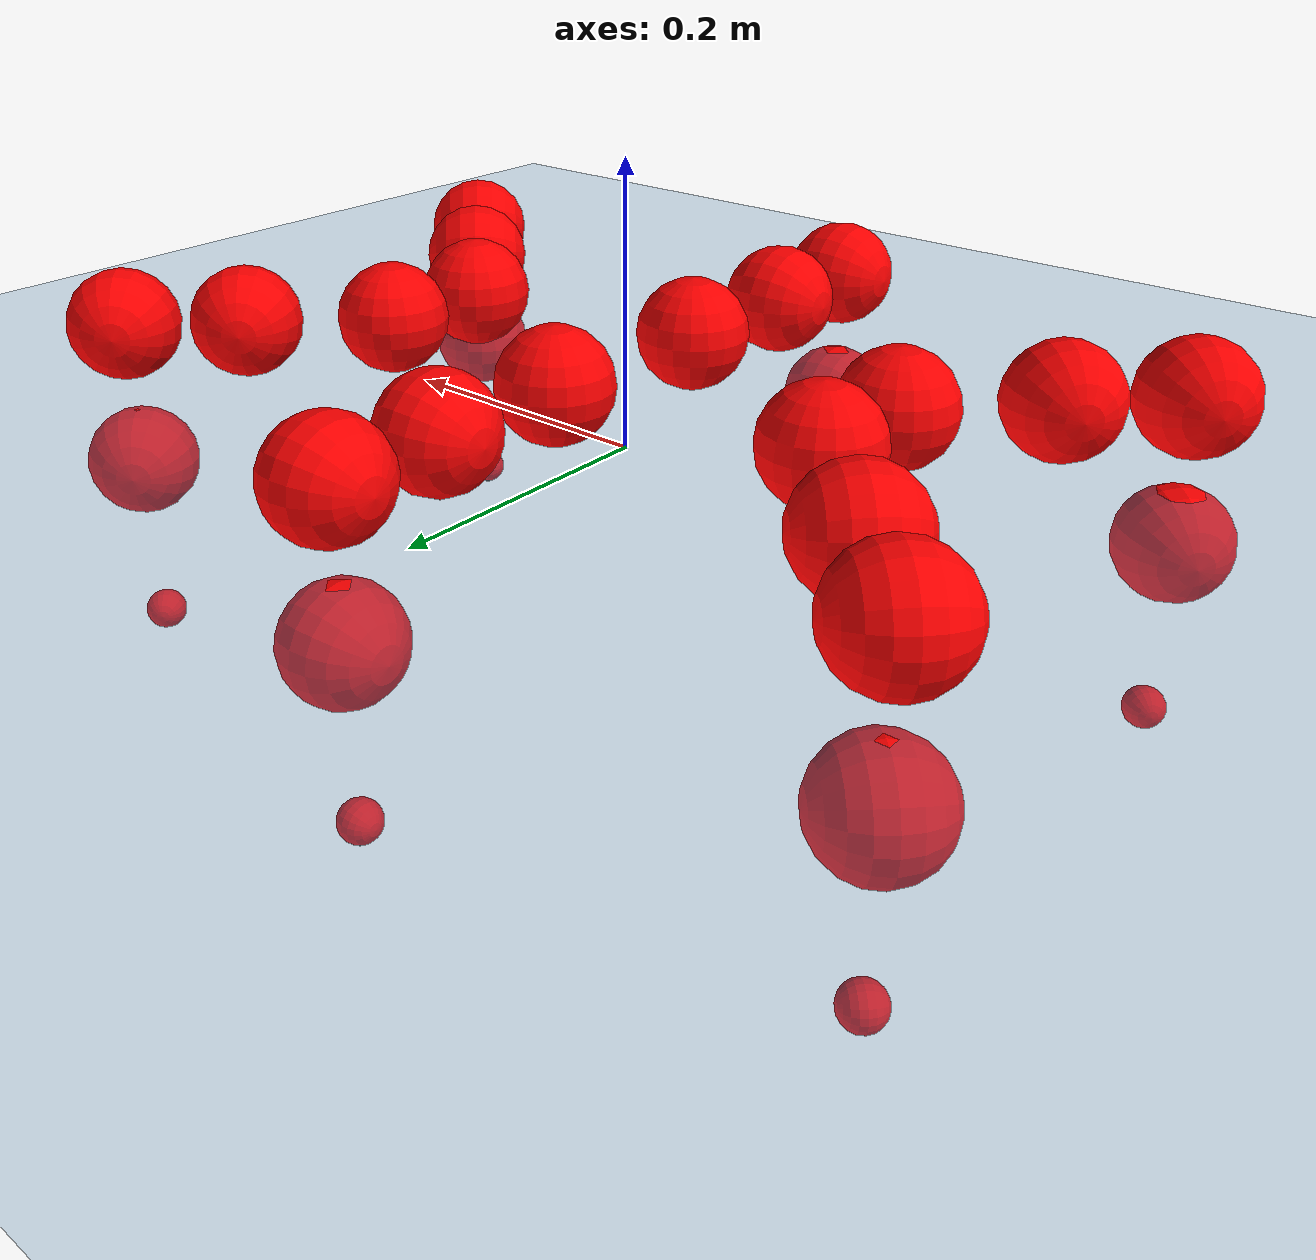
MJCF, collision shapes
<mujoco model="Golem">
  <compiler angle="radian" assetdir="assets" balanceinertia="true" inertiafromgeom="false"/>

  <option timestep="0.005" density="1.2" viscosity="2e-05"/>

  <size nkey="1"/>

  <visual>
    <quality shadowsize="8192"/>
    <map shadowclip="0.5"/>
  </visual>

  <default>
    <default class="/">
      <joint armature="0.01" damping="0.01" frictionloss="0.01"/>
      <geom contype="0" conaffinity="0" group="1" solref="-1000 -80"/>
      <site size="0.01 0.005 0.005" group="5"/>
      <general forcelimited="true" biastype="affine" gainprm="25" biasprm="0 -25 -0.5"/>
      <default class="visual">
        <geom type="mesh" group="2"/>
      </default>
      <default class="collision">
        <geom group="3"/>
      </default>
      <default class="foot">
        <geom size="0.01 0 0" condim="6" group="4" priority="1" solimp="0.015 1 0.01"/>
      </default>
      <default class="reward_collision_sphere">
        <geom group="5" rgba="1 0 0 1"/>
      </default>
    </default>
  </default>

  <asset>
    <texture type="skybox" colorspace="auto" name="//unnamed_texture_0" builtin="gradient" rgb1="0.95 0.95 0.95" rgb2="0.95 0.95 0.95" width="100" height="600"/>
    <texture type="2d" colorspace="auto" name="texplane" builtin="checker" rgb1="0.345 0.575 0.748" rgb2="0.345 0.575 0.748" markrgb="1 1 1" width="512" height="512"/>
    <material name="MatPlane" class="/" texture="texplane" texuniform="true" texrepeat="2 2" specular="0.9"/>
    <mesh name="body" class="/" file="body.stl" scale="0.001 0.001 0.001"/>
    <mesh name="coxa" class="/" file="coxa.stl" scale="0.001 0.001 0.001"/>
    <mesh name="femur" class="/" file="femur.stl" scale="0.001 0.001 0.001"/>
    <mesh name="tibia" class="/" file="tibia.stl" scale="0.001 0.001 0.001"/>
    <mesh name="tarsus" class="/" file="tarsus.stl" scale="0.001 0.001 0.001"/>
  </asset>

  <worldbody>
    <geom name="floor" class="/" size="100 100 0.125" type="plane" group="0" material="MatPlane"/>
    <light name="toplight_shadow" class="/" pos="0 0 5" dir="0.0990148 0.0990148 -0.990148" type="directional" ambient="0.04 0.04 0.04" diffuse="0.55 0.55 0.55" specular="0.12 0.12 0.12"/>
    <light name="toplight_fill" class="/" pos="0 0 5" dir="0.0990148 0.0990148 -0.990148" type="directional" castshadow="false" ambient="0.04 0.04 0.04" diffuse="0.3 0.3 0.3" specular="0.08 0.08 0.08"/>
    <body name="trunk" pos="0.000406018 -0.000144692 0.000931364" quat="1 -2.66069e-05 -4.96477e-05 -0.000204209">
      <inertial pos="-0.000408205 0.000304723 -0.00450597" quat="0.999982 0.00160319 0.00411646 -0.00403479" mass="3.72128" diaginertia="0.0235378 0.00329136 0.0105014"/>
      <joint name="//unnamed_joint_0" type="free"/>
      <geom name="//unnamed_geom_1" class="/" pos="0 0 0.0644937" quat="1 0 0 0" type="mesh" rgba="0.9 0.9 0.9 1" mesh="body"/>
      <site name="imu" class="/" pos="0.149008 0.00346573 0.105622" size="0.00997323"/>
      <camera name="track" class="/" pos="0 -1.60101 0" quat="0.707107 0.707107 0 0" mode="trackcom"/>
      <camera name="ego_camera" class="/" pos="0.153887 0 0.100771" quat="-0.5 -0.5 0.5 0.5"/>
      <body name="coxa_RR" pos="-0.210251 -0.0662918 0.0634456" quat="0.382595 -0.000117566 2.11942e-05 -0.923916">
        <inertial pos="0.000378752 0.000240074 0.00110948" quat="0.999996 -0.000977231 -0.00161203 0.0023241" mass="0.198104" diaginertia="0.0234465 0.00329931 0.0103986"/>
        <joint name="coxa_joint_RR" class="/" pos="0 0 0" axis="0.00426951 -0.00413805 -0.999982" range="-3.11993 3.16147" armature="0.0104311" damping="0.00513081" frictionloss="0.0103844"/>
        <geom name="//unnamed_geom_2" class="/" type="mesh" rgba="0.2 0.2 0.2 1" mesh="coxa"/>
        <geom name="//unnamed_geom_3" class="reward_collision_sphere" size="0.0398929" pos="-0.0355124 0 0"/>
        <body name="femur_RR" pos="0.070102 0.00200791 0.000675842" quat="0.499902 -0.500204 0.499811 0.500084">
          <inertial pos="0.00102127 0.00102327 0.00164975" quat="0.999999 -0.000276699 5.90342e-05 -0.000977429" mass="0.198437" diaginertia="0.0231269 0.00324596 0.0104958"/>
          <joint name="femur_joint_RR" class="/" pos="0 0 0" axis="-0.00150085 0.000738391 -0.999999" stiffness="0.000289846" range="-3.13287 3.1372" armature="0.00967295" damping="0" frictionloss="0.0108216"/>
          <geom name="//unnamed_geom_4" class="/" type="mesh" rgba="0.9 0.9 0.9 1" mesh="femur"/>
          <geom name="//unnamed_geom_5" class="reward_collision_sphere" size="0.0398929"/>
          <body name="tibia_RR" pos="-0.000207244 -0.0854255 -0.0015171" quat="-9.65772e-05 1 5.88204e-05 0.000168089">
            <inertial pos="-0.000749623 -0.00168016 4.08338e-05" quat="0.999998 -0.000358992 -0.00212772 0.00034447" mass="0.196305" diaginertia="0.0233036 0.00328051 0.0104138"/>
            <joint name="tibia_joint_RR" class="/" pos="0 0 0" axis="0.00206947 0.000904014 0.999997" stiffness="0.000717505" range="-3.1398 3.1377" armature="0.0102635" damping="0.0091069" frictionloss="0.0102866"/>
            <geom name="//unnamed_geom_6" class="/" type="mesh" rgba="0.2 0.2 0.2 1" mesh="tibia"/>
            <geom name="//unnamed_geom_7" class="reward_collision_sphere" size="0.0398929"/>
            <body name="tarsus_RR" pos="0.102479 0.000627602 5.60944e-05" quat="1 0.00010329 0.000138824 0.000213175">
              <inertial pos="0.0722082 0.00108565 -0.000166381" quat="0.497876 0.502585 0.501606 0.497914" mass="0.198321" diaginertia="0.0235566 0.00330034 0.0104505"/>
              <joint name="tarsus_joint_RR" class="/" pos="0 0 0" axis="0.00182353 -0.00256959 0.999995" range="-3.17141 3.17373" armature="0.0100542" damping="0" frictionloss="0.0098111"/>
              <geom name="//unnamed_geom_8" class="/" type="mesh" rgba="0.9 0.9 0.9 1" mesh="tarsus"/>
              <geom name="foot_1" class="foot" size="0.00978916" pos="0.13258 0 0" quat="0 -0.707107 0 0.707107"/>
              <geom name="//unnamed_geom_10" class="reward_collision_sphere" size="0.0398929"/>
              <geom name="//unnamed_geom_11" class="reward_collision_sphere" size="0.0149598" pos="0.127253 0 0"/>
              <site name="foot_1" class="foot" pos="0.13258 0 0" quat="0 -0.707107 0 0.707107" size="0.00997323"/>
            </body>
          </body>
        </body>
      </body>
      <body name="coxa_RM" pos="-0.00142375 -0.107108 0.0633096" quat="0.707338 -0.000327507 0.00017888 -0.706875">
        <inertial pos="0.000368771 0.000879967 -3.74738e-05" quat="0.999973 -0.00665112 5.55437e-05 0.00321216" mass="0.200547" diaginertia="0.0232635 0.00328838 0.0104824"/>
        <joint name="coxa_joint_RM" class="/" pos="0 0 0" axis="-0.00262885 0.00195305 -0.999995" range="-3.14291 3.14667" armature="0.0100796" damping="0.0105005" frictionloss="0.0097104"/>
        <geom name="//unnamed_geom_12" class="/" type="mesh" rgba="0.2 0.2 0.2 1" mesh="coxa"/>
        <geom name="//unnamed_geom_13" class="reward_collision_sphere" size="0.0398929" pos="-0.0355124 0 0"/>
        <body name="femur_RM" pos="0.0703663 -0.000475761 -0.000152989" quat="0.499952 -0.499975 0.499676 0.500397">
          <inertial pos="-0.00127698 0.000742506 -0.00170418" quat="0.999997 0.00126322 0.00118852 -0.00172346" mass="0.19997" diaginertia="0.0231111 0.00328902 0.0102741"/>
          <joint name="femur_joint_RM" class="/" pos="0 0 0" axis="-0.00077397 0.00371488 -0.999993" range="-3.14309 3.16133" armature="0.00944891" damping="0.004695" frictionloss="0.00954363"/>
          <geom name="//unnamed_geom_14" class="/" type="mesh" rgba="0.9 0.9 0.9 1" mesh="femur"/>
          <geom name="//unnamed_geom_15" class="reward_collision_sphere" size="0.0398929"/>
          <body name="tibia_RM" pos="0.000106863 -0.0870934 0.00125177" quat="-2.14371e-05 1 -6.87609e-05 -0.00045646">
            <inertial pos="0.000543126 -0.000344262 -0.00032637" quat="1 -0.000141824 -0.000211379 0.000386513" mass="0.19675" diaginertia="0.022879 0.00321831 0.0103446"/>
            <joint name="tibia_joint_RM" class="/" pos="0 0 0" axis="0.00473091 -0.00129457 0.999988" range="-3.15671 3.12513" armature="0.00972971" damping="0" frictionloss="0.00948706"/>
            <geom name="//unnamed_geom_16" class="/" type="mesh" rgba="0.2 0.2 0.2 1" mesh="tibia"/>
            <geom name="//unnamed_geom_17" class="reward_collision_sphere" size="0.0398929"/>
            <body name="tarsus_RM" pos="0.102946 0.000771755 -0.000701711" quat="1 -9.92444e-05 0.000224125 7.89787e-05">
              <inertial pos="0.0715474 0.00014719 -0.000166943" quat="0.500033 0.499956 0.500047 0.499964" mass="0.196769" diaginertia="0.0228507 0.00325933 0.0100979"/>
              <joint name="tarsus_joint_RM" class="/" pos="0 0 0" axis="-0.00265006 -0.000703791 0.999996" range="-3.15418 3.11085" armature="0.0100342" damping="0.00226758" frictionloss="0.0100566"/>
              <geom name="//unnamed_geom_18" class="/" type="mesh" rgba="0.9 0.9 0.9 1" mesh="tarsus"/>
              <geom name="foot_2" class="foot" size="0.00975225" pos="0.13258 0 0" quat="0 -0.707107 0 0.707107"/>
              <geom name="//unnamed_geom_20" class="reward_collision_sphere" size="0.0398929"/>
              <geom name="//unnamed_geom_21" class="reward_collision_sphere" size="0.0149598" pos="0.127253 0 0"/>
              <site name="foot_2" class="foot" pos="0.13258 0 0" quat="0 -0.707107 0 0.707107" size="0.00997323"/>
            </body>
          </body>
        </body>
      </body>
      <body name="coxa_RF" pos="0.209823 -0.0672599 0.0636189" quat="0.923664 9.40807e-05 -5.64968e-05 -0.383203">
        <inertial pos="-0.000816006 -0.0019253 0.00059596" quat="0.999997 0.000908166 0.00137913 -0.00156534" mass="0.197174" diaginertia="0.0232009 0.00326454 0.0103103"/>
        <joint name="coxa_joint_RF" class="/" pos="0 0 0" axis="9.03532e-05 4.57299e-05 -1" stiffness="0.000655366" range="-3.13977 3.13149" armature="0.00974209" damping="0" frictionloss="0.00993726"/>
        <geom name="//unnamed_geom_22" class="/" type="mesh" rgba="0.2 0.2 0.2 1" mesh="coxa"/>
        <geom name="//unnamed_geom_23" class="reward_collision_sphere" size="0.0398929" pos="-0.0355124 0 0"/>
        <body name="femur_RF" pos="0.0712478 0.000895061 -0.00117792" quat="0.500044 -0.499904 0.500021 0.500031">
          <inertial pos="0.000733469 -0.000202911 0.000326691" quat="0.999999 -0.0015425 -0.000660336 -0.000299446" mass="0.196406" diaginertia="0.0232662 0.00318355 0.0103032"/>
          <joint name="femur_joint_RF" class="/" pos="0 0 0" axis="0.000852316 0.00161983 -0.999998" range="-3.11665 3.13927" armature="0.0100659" damping="0.00458927" frictionloss="0.0100265"/>
          <geom name="//unnamed_geom_24" class="/" type="mesh" rgba="0.9 0.9 0.9 1" mesh="femur"/>
          <geom name="//unnamed_geom_25" class="reward_collision_sphere" size="0.0398929"/>
          <body name="tibia_RF" pos="-0.000862102 -0.0870694 -0.00115023" quat="1.43057e-05 1 2.32067e-06 8.40969e-06">
            <inertial pos="-0.000164213 0.00104694 -1.51681e-05" quat="0.999972 -0.00468872 -0.00535968 0.00208223" mass="0.20367" diaginertia="0.02327 0.00331461 0.0104357"/>
            <joint name="tibia_joint_RF" class="/" pos="0 0 0" axis="0.000838152 -0.00204319 0.999998" range="-3.13963 3.13751" armature="0.0100535" damping="0.00184208" frictionloss="0.00984082"/>
            <geom name="//unnamed_geom_26" class="/" type="mesh" rgba="0.2 0.2 0.2 1" mesh="tibia"/>
            <geom name="//unnamed_geom_27" class="reward_collision_sphere" size="0.0398929"/>
            <body name="tarsus_RF" pos="0.104569 0.00051303 -0.00156074" quat="1 0.000384839 4.67875e-05 -0.000121902">
              <inertial pos="0.0699261 -0.000839517 -0.000939267" quat="0.501281 0.500825 0.497343 0.500541" mass="0.195232" diaginertia="0.0233402 0.00327929 0.0102872"/>
              <joint name="tarsus_joint_RF" class="/" pos="0 0 0" axis="0.000711577 0.00314268 0.999995" range="-3.14053 3.13898" armature="0.0100255" damping="0.0104449" frictionloss="0.0102101"/>
              <geom name="//unnamed_geom_28" class="/" type="mesh" rgba="0.9 0.9 0.9 1" mesh="tarsus"/>
              <geom name="foot_3" class="foot" size="0.0102177" pos="0.13258 0 0" quat="0 -0.707107 0 0.707107"/>
              <geom name="//unnamed_geom_30" class="reward_collision_sphere" size="0.0398929"/>
              <geom name="//unnamed_geom_31" class="reward_collision_sphere" size="0.0149598" pos="0.127253 0 0"/>
              <site name="foot_3" class="foot" pos="0.13258 0 0" quat="0 -0.707107 0 0.707107" size="0.00997323"/>
            </body>
          </body>
        </body>
      </body>
      <body name="coxa_LR" pos="-0.210185 0.0682419 0.0661532" quat="0.383089 0.000266033 -0.000192139 0.923711">
        <inertial pos="-0.000169358 -0.000378018 0.00153787" quat="0.999998 -0.00143589 -0.000533306 0.00125263" mass="0.197416" diaginertia="0.0230386 0.00324982 0.0101304"/>
        <joint name="coxa_joint_LR" class="/" pos="0 0 0" axis="-0.00103681 0.00210991 -0.999997" range="-3.11974 3.12724" armature="0.0104172" damping="0.000397854" frictionloss="0.00933776"/>
        <geom name="//unnamed_geom_32" class="/" type="mesh" rgba="0.2 0.2 0.2 1" mesh="coxa"/>
        <geom name="//unnamed_geom_33" class="reward_collision_sphere" size="0.0398929" pos="-0.0355124 0 0"/>
        <body name="femur_LR" pos="0.0719452 -0.00204328 -0.00188647" quat="0.499968 -0.500297 0.499867 0.499868">
          <inertial pos="0.000642324 0.000775621 -0.000320549" quat="0.999992 0.00046317 0.00378103 -0.000795382" mass="0.194387" diaginertia="0.0232699 0.00329526 0.0103537"/>
          <joint name="femur_joint_LR" class="/" pos="0 0 0" axis="0.000630839 -0.00470791 0.999989" range="-3.17279 3.11747" armature="0.00937594" damping="0.00689346" frictionloss="0.00984276"/>
          <geom name="//unnamed_geom_34" class="/" type="mesh" rgba="0.9 0.9 0.9 1" mesh="femur"/>
          <geom name="//unnamed_geom_35" class="reward_collision_sphere" size="0.0398929"/>
          <body name="tibia_LR" pos="-2.65463e-05 -0.0884269 -0.00171208" quat="0.000151156 1 0.000265761 -0.000320406">
            <inertial pos="-0.0011583 -0.000675214 -0.000440452" quat="1 0.000466293 -0.000524178 0.000182163" mass="0.199599" diaginertia="0.0233229 0.00332147 0.0105134"/>
            <joint name="tibia_joint_LR" class="/" pos="0 0 0" axis="0.000109393 0.00708464 -0.999975" range="-3.12858 3.12855" armature="0.0103394" damping="0" frictionloss="0.00998454"/>
            <geom name="//unnamed_geom_36" class="/" type="mesh" rgba="0.2 0.2 0.2 1" mesh="tibia"/>
            <geom name="//unnamed_geom_37" class="reward_collision_sphere" size="0.0398929"/>
            <body name="tarsus_LR" pos="0.105233 0.00105028 0.00117282" quat="1 0.000609194 2.06802e-05 5.79149e-05">
              <inertial pos="0.0709332 0.000156182 0.000825828" quat="0.500035 0.499631 0.500274 0.50006" mass="0.19732" diaginertia="0.0231371 0.00322967 0.0102255"/>
              <joint name="tarsus_joint_LR" class="/" pos="0 0 0" axis="0.00157316 -0.00242795 -0.999996" range="-3.13497 3.14008" armature="0.0094925" damping="0.0299143" frictionloss="0.0103953"/>
              <geom name="//unnamed_geom_38" class="/" type="mesh" rgba="0.9 0.9 0.9 1" mesh="tarsus"/>
              <geom name="foot_4" class="foot" size="0.00988669" pos="0.13258 0 0" quat="0.707107 0 -0.707107 0"/>
              <geom name="//unnamed_geom_40" class="reward_collision_sphere" size="0.0398929"/>
              <geom name="//unnamed_geom_41" class="reward_collision_sphere" size="0.0149598" pos="0.127253 0 0"/>
              <site name="foot_4" class="foot" pos="0.13258 0 0" quat="0.707107 0 -0.707107 0" size="0.00997323"/>
            </body>
          </body>
        </body>
      </body>
      <body name="coxa_LM" pos="0.000148072 0.104569 0.0647894" quat="0.707121 4.37544e-05 -1.7121e-05 0.707092">
        <inertial pos="0.00111183 -0.000140801 -8.53424e-05" quat="0.999992 -0.00125541 0.0036331 0.000521898" mass="0.196536" diaginertia="0.0235605 0.00326114 0.0103277"/>
        <joint name="coxa_joint_LM" class="/" pos="0 0 0" axis="-0.0041914 -0.00363164 -0.999985" range="-3.12837 3.14148" armature="0.00976363" damping="0" frictionloss="0.0103272"/>
        <geom name="//unnamed_geom_42" class="/" type="mesh" rgba="0.2 0.2 0.2 1" mesh="coxa"/>
        <geom name="//unnamed_geom_43" class="reward_collision_sphere" size="0.0398929" pos="-0.0355124 0 0"/>
        <body name="femur_LM" pos="0.0674705 0.00116672 0.000645619" quat="0.499872 -0.500062 0.500093 0.499973">
          <inertial pos="-0.000749846 0.000153254 0.000891525" quat="0.999995 0.000942006 0.000674509 -0.00282603" mass="0.199389" diaginertia="0.022607 0.00326011 0.0104261"/>
          <joint name="femur_joint_LM" class="/" pos="0 0 0" axis="-0.00949695 0.00587532 0.999938" stiffness="0.000455477" range="-3.11661 3.15914" armature="0.0101545" damping="0" frictionloss="0.0099562"/>
          <geom name="//unnamed_geom_44" class="/" type="mesh" rgba="0.9 0.9 0.9 1" mesh="femur"/>
          <geom name="//unnamed_geom_45" class="reward_collision_sphere" size="0.0398929"/>
          <body name="tibia_LM" pos="0.000612961 -0.0840303 0.00150966" quat="4.69605e-05 1 0.000102366 1.45775e-05">
            <inertial pos="-0.00120476 0.000254325 0.000108965" quat="0.999995 0.00296611 -0.000176292 -0.000884101" mass="0.199288" diaginertia="0.0232612 0.00328221 0.0102992"/>
            <joint name="tibia_joint_LM" class="/" pos="0 0 0" axis="0.000300904 -0.000184447 -1" range="-3.14822 3.15886" armature="0.010125" damping="0" frictionloss="0.00903746"/>
            <geom name="//unnamed_geom_46" class="/" type="mesh" rgba="0.2 0.2 0.2 1" mesh="tibia"/>
            <geom name="//unnamed_geom_47" class="reward_collision_sphere" size="0.0398929"/>
            <body name="tarsus_LM" pos="0.105103 -0.000964321 0.000307002" quat="1 -1.86165e-05 -0.000389697 0.000105939">
              <inertial pos="0.070692 0.000108611 0.000640213" quat="0.49807 0.500427 0.499735 0.50176" mass="0.197413" diaginertia="0.0233955 0.00328661 0.0104724"/>
              <joint name="tarsus_joint_LM" class="/" pos="0 0 0" axis="0.000547876 0.00264366 -0.999996" stiffness="0.000836488" range="-3.13991 3.13845" armature="0.00966346" damping="0.000614135" frictionloss="0.0101717"/>
              <geom name="//unnamed_geom_48" class="/" type="mesh" rgba="0.9 0.9 0.9 1" mesh="tarsus"/>
              <geom name="foot_5" class="foot" size="0.0107904" pos="0.13258 0 0" quat="0.707107 0 -0.707107 0"/>
              <geom name="//unnamed_geom_50" class="reward_collision_sphere" size="0.0398929"/>
              <geom name="//unnamed_geom_51" class="reward_collision_sphere" size="0.0149598" pos="0.127253 0 0"/>
              <site name="foot_5" class="foot" pos="0.13258 0 0" quat="0.707107 0 -0.707107 0" size="0.00997323"/>
            </body>
          </body>
        </body>
      </body>
      <body name="coxa_LF" pos="0.21051 0.0664469 0.0637006" quat="0.923816 5.22473e-05 -0.000213616 0.382837">
        <inertial pos="9.28223e-05 -0.00148588 0.000320803" quat="0.999991 0.000713892 0.00405902 0.000792541" mass="0.201733" diaginertia="0.0238352 0.00335506 0.0105806"/>
        <joint name="coxa_joint_LF" class="/" pos="0 0 0" axis="-0.0074331 -0.00196305 -0.99997" range="-3.14165 3.14121" armature="0.00949567" damping="0" frictionloss="0.00976634"/>
        <geom name="//unnamed_geom_52" class="/" type="mesh" rgba="0.2 0.2 0.2 1" mesh="coxa"/>
        <geom name="//unnamed_geom_53" class="reward_collision_sphere" size="0.0398929" pos="-0.0355124 0 0"/>
        <body name="femur_LF" pos="0.069069 0.000773286 0.000349377" quat="0.499873 -0.50009 0.500013 0.500023">
          <inertial pos="-0.000102306 -0.000666061 -0.000778682" quat="1 -0.000118582 0.000408954 -5.20028e-05" mass="0.196104" diaginertia="0.0228 0.00325225 0.0102894"/>
          <joint name="femur_joint_LF" class="/" pos="0 0 0" axis="-3.89012e-05 0.000133419 1" range="-3.14214 3.13737" armature="0.00975398" damping="0" frictionloss="0.0100231"/>
          <geom name="//unnamed_geom_54" class="/" type="mesh" rgba="0.9 0.9 0.9 1" mesh="femur"/>
          <geom name="//unnamed_geom_55" class="reward_collision_sphere" size="0.0398929"/>
          <body name="tibia_LF" pos="1.35772e-05 -0.0861843 -0.000190589" quat="-3.06656e-05 1 -3.95691e-07 7.32024e-06">
            <inertial pos="0.00120442 0.00138043 0.00173807" quat="0.999994 0.00210316 -0.00195792 0.00191515" mass="0.197516" diaginertia="0.02319 0.00324962 0.0105704"/>
            <joint name="tibia_joint_LF" class="/" pos="0 0 0" axis="0.00456566 -0.00673713 -0.999967" range="-3.14743 3.11525" armature="0.00987596" damping="0.00143086" frictionloss="0.0102638"/>
            <geom name="//unnamed_geom_56" class="/" type="mesh" rgba="0.2 0.2 0.2 1" mesh="tibia"/>
            <geom name="//unnamed_geom_57" class="reward_collision_sphere" size="0.0398929"/>
            <body name="tarsus_LF" pos="0.105548 -1.10601e-05 -0.000540446" quat="1 -2.67816e-05 2.98534e-06 -1.74701e-05">
              <inertial pos="0.0719794 0.000292378 0.00114092" quat="0.498932 0.499518 0.49998 0.501567" mass="0.197168" diaginertia="0.0234021 0.00328196 0.0105749"/>
              <joint name="tarsus_joint_LF" class="/" pos="0 0 0" axis="0.000933008 -0.00124455 -0.999999" range="-3.14979 3.11151" armature="0.0095048" damping="0.0113298" frictionloss="0.00955399"/>
              <geom name="//unnamed_geom_58" class="/" type="mesh" rgba="0.9 0.9 0.9 1" mesh="tarsus"/>
              <geom name="foot_6" class="foot" size="0.00978412" pos="0.13258 0 0" quat="0.707107 0 -0.707107 0"/>
              <geom name="//unnamed_geom_60" class="reward_collision_sphere" size="0.0398929"/>
              <geom name="//unnamed_geom_61" class="reward_collision_sphere" size="0.0149598" pos="0.127253 0 0"/>
              <site name="foot_6" class="foot" pos="0.13258 0 0" quat="0.707107 0 -0.707107 0" size="0.00997323"/>
            </body>
          </body>
        </body>
      </body>
    </body>
  </worldbody>

  <contact>
    <pair class="/" geom1="floor" geom2="foot_1" name="//unnamed_contact_0"/>
    <pair class="/" geom1="floor" geom2="foot_2" name="//unnamed_contact_1"/>
    <pair class="/" geom1="floor" geom2="foot_3" name="//unnamed_contact_2"/>
    <pair class="/" geom1="floor" geom2="foot_4" name="//unnamed_contact_3"/>
    <pair class="/" geom1="floor" geom2="foot_5" name="//unnamed_contact_4"/>
    <pair class="/" geom1="floor" geom2="foot_6" name="//unnamed_contact_5"/>
  </contact>

  <actuator>
    <general name="coxa_joint_RR" class="/" joint="coxa_joint_RR" forcerange="-7.27583 7.27583" gainprm="24.5355" biasprm="0 -24.5355 -0.507794"/>
    <general name="femur_joint_RR" class="/" joint="femur_joint_RR" forcerange="-7.24974 7.24974" gainprm="24.5355" biasprm="0 -24.5355 -0.507794"/>
    <general name="tibia_joint_RR" class="/" joint="tibia_joint_RR" forcerange="-7.28171 7.28171" gainprm="24.5355" biasprm="0 -24.5355 -0.507794"/>
    <general name="tarsus_joint_RR" class="/" joint="tarsus_joint_RR" forcerange="-7.36859 7.36859" gainprm="24.5355" biasprm="0 -24.5355 -0.507794"/>
    <general name="coxa_joint_RM" class="/" joint="coxa_joint_RM" forcerange="-7.20969 7.20969" gainprm="24.5355" biasprm="0 -24.5355 -0.507794"/>
    <general name="femur_joint_RM" class="/" joint="femur_joint_RM" forcerange="-7.24684 7.24684" gainprm="24.5355" biasprm="0 -24.5355 -0.507794"/>
    <general name="tibia_joint_RM" class="/" joint="tibia_joint_RM" forcerange="-7.32279 7.32279" gainprm="24.5355" biasprm="0 -24.5355 -0.507794"/>
    <general name="tarsus_joint_RM" class="/" joint="tarsus_joint_RM" forcerange="-7.28578 7.28578" gainprm="24.5355" biasprm="0 -24.5355 -0.507794"/>
    <general name="coxa_joint_RF" class="/" joint="coxa_joint_RF" forcerange="-7.23327 7.23327" gainprm="24.5355" biasprm="0 -24.5355 -0.507794"/>
    <general name="femur_joint_RF" class="/" joint="femur_joint_RF" forcerange="-7.2619 7.2619" gainprm="24.5355" biasprm="0 -24.5355 -0.507794"/>
    <general name="tibia_joint_RF" class="/" joint="tibia_joint_RF" forcerange="-7.31315 7.31315" gainprm="24.5355" biasprm="0 -24.5355 -0.507794"/>
    <general name="tarsus_joint_RF" class="/" joint="tarsus_joint_RF" forcerange="-7.31921 7.31921" gainprm="24.5355" biasprm="0 -24.5355 -0.507794"/>
    <general name="coxa_joint_LR" class="/" joint="coxa_joint_LR" forcerange="-7.48069 7.48069" gainprm="24.5355" biasprm="0 -24.5355 -0.507794"/>
    <general name="femur_joint_LR" class="/" joint="femur_joint_LR" forcerange="-7.12323 7.12323" gainprm="24.5355" biasprm="0 -24.5355 -0.507794"/>
    <general name="tibia_joint_LR" class="/" joint="tibia_joint_LR" forcerange="-7.41039 7.41039" gainprm="24.5355" biasprm="0 -24.5355 -0.507794"/>
    <general name="tarsus_joint_LR" class="/" joint="tarsus_joint_LR" forcerange="-7.28108 7.28108" gainprm="24.5355" biasprm="0 -24.5355 -0.507794"/>
    <general name="coxa_joint_LM" class="/" joint="coxa_joint_LM" forcerange="-7.34801 7.34801" gainprm="24.5355" biasprm="0 -24.5355 -0.507794"/>
    <general name="femur_joint_LM" class="/" joint="femur_joint_LM" forcerange="-7.54534 7.54534" gainprm="24.5355" biasprm="0 -24.5355 -0.507794"/>
    <general name="tibia_joint_LM" class="/" joint="tibia_joint_LM" forcerange="-7.29706 7.29706" gainprm="24.5355" biasprm="0 -24.5355 -0.507794"/>
    <general name="tarsus_joint_LM" class="/" joint="tarsus_joint_LM" forcerange="-7.06575 7.06575" gainprm="24.5355" biasprm="0 -24.5355 -0.507794"/>
    <general name="coxa_joint_LF" class="/" joint="coxa_joint_LF" forcerange="-7.43233 7.43233" gainprm="24.5355" biasprm="0 -24.5355 -0.507794"/>
    <general name="femur_joint_LF" class="/" joint="femur_joint_LF" forcerange="-7.23274 7.23274" gainprm="24.5355" biasprm="0 -24.5355 -0.507794"/>
    <general name="tibia_joint_LF" class="/" joint="tibia_joint_LF" forcerange="-7.29403 7.29403" gainprm="24.5355" biasprm="0 -24.5355 -0.507794"/>
    <general name="tarsus_joint_LF" class="/" joint="tarsus_joint_LF" forcerange="-6.77667 6.77667" gainprm="24.5355" biasprm="0 -24.5355 -0.507794"/>
  </actuator>

  <sensor>
    <gyro site="imu" name="imu_angular_velocity"/>
    <velocimeter site="imu" name="imu_linear_velocity"/>
    <framelinvel objtype="site" objname="foot_1" name="foot_1_global_linear_velocity"/>
    <framelinvel objtype="site" objname="foot_2" name="foot_2_global_linear_velocity"/>
    <framelinvel objtype="site" objname="foot_3" name="foot_3_global_linear_velocity"/>
    <framelinvel objtype="site" objname="foot_4" name="foot_4_global_linear_velocity"/>
    <framelinvel objtype="site" objname="foot_5" name="foot_5_global_linear_velocity"/>
    <framelinvel objtype="site" objname="foot_6" name="foot_6_global_linear_velocity"/>
  </sensor>

  <keyframe>
    <key name="home" qpos="0 0 0.1457 1 0 0 0 0 0 0 0 0 0 0 0 0 0 0 0 0 0 0 0 0 0 0 0 0 0 0 0"/>
  </keyframe>
</mujoco>
